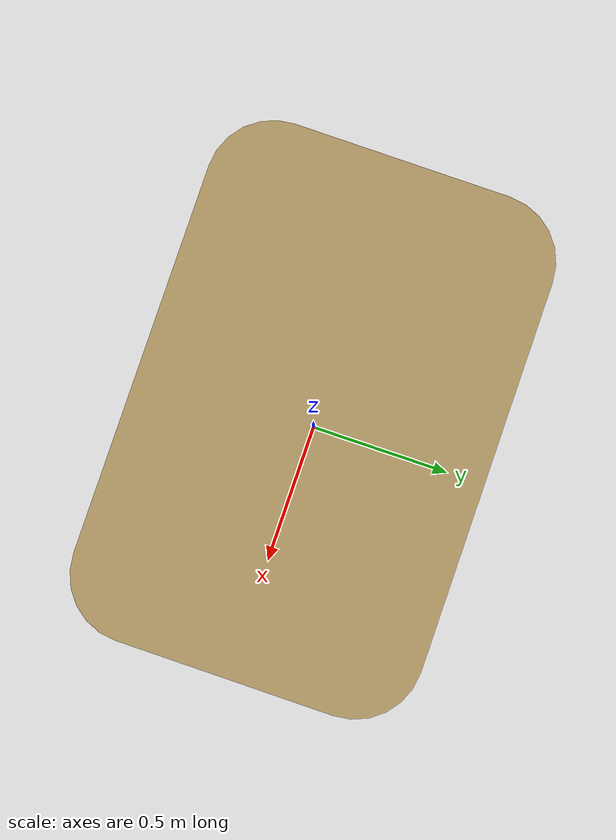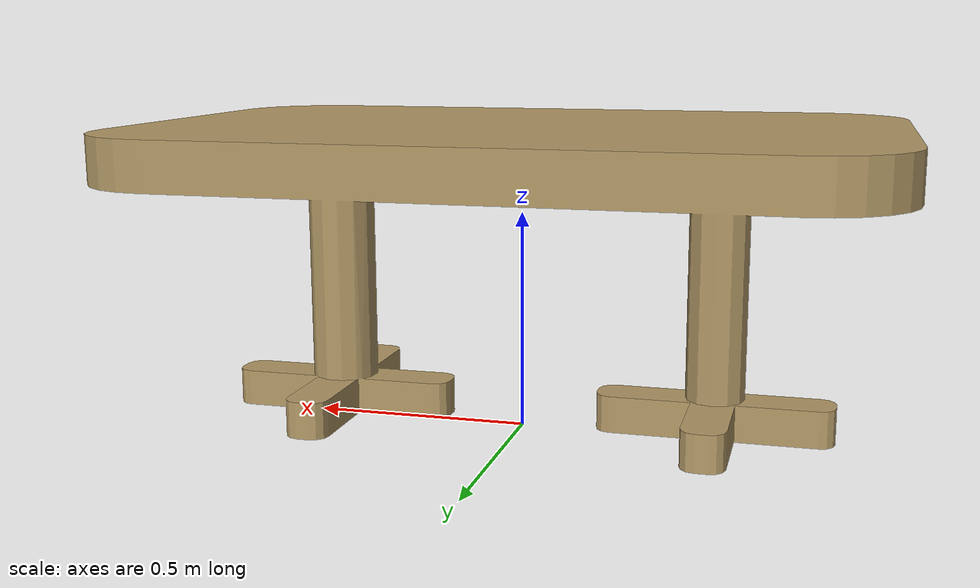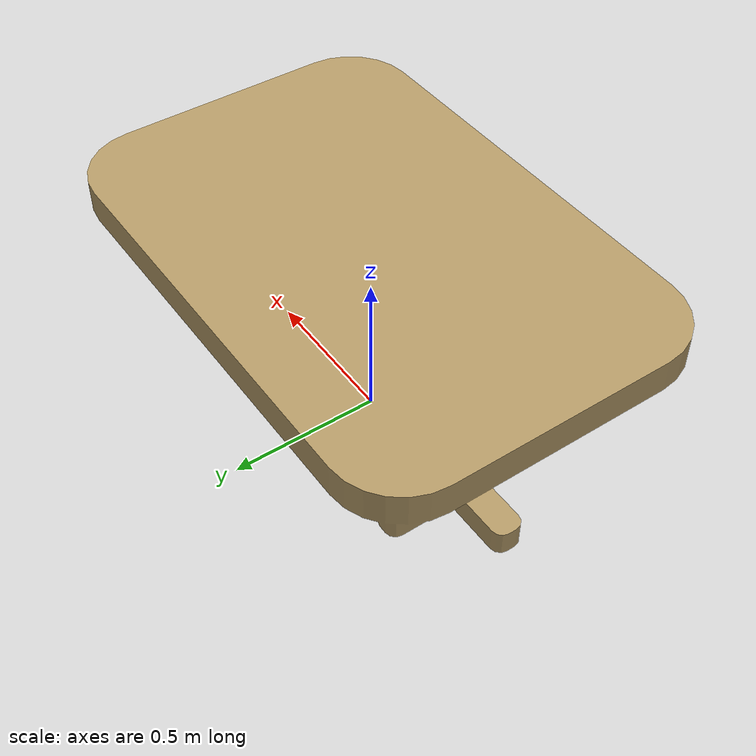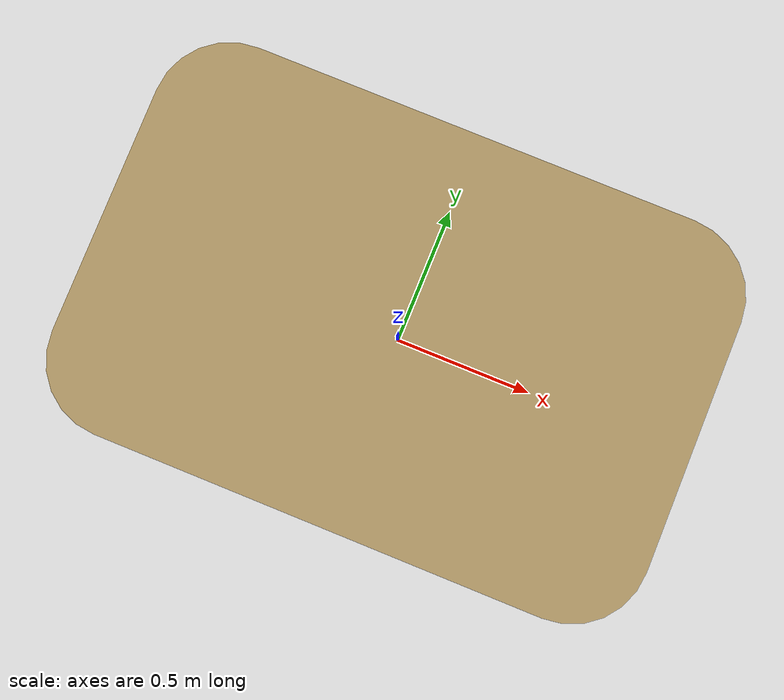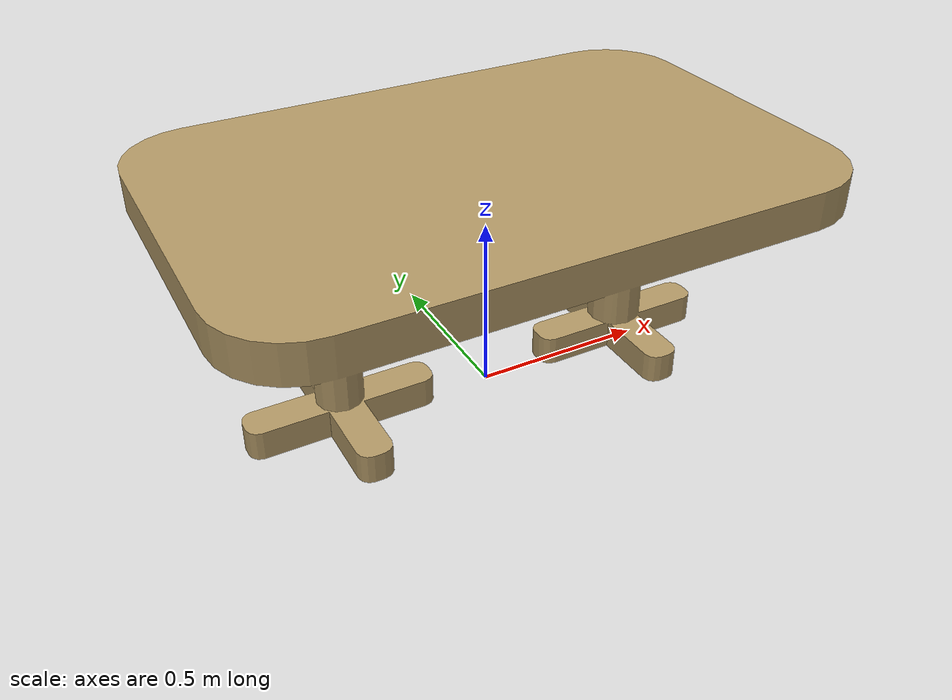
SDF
<?xml version='1.0'?>
<sdf version='1.6'>
  <model name='rai_dinner_table'>
    <link name='link_0'>
      <pose frame=''>0 0 0 0 -0 0</pose>
      <visual name='visual'>
        <pose frame=''>0 0 0.6 1.57 -0 0</pose>
        <geometry>
          <mesh>
            <uri>model://rai_dinning_table/meshes/rai_dinning_table.STL</uri>
            <scale>1 1 1</scale>
          </mesh>
        </geometry>
        <material>
          <lighting>1</lighting>
          <script>
            <uri>file://media/materials/scripts/gazebo.material</uri>
            <name>Gazebo/Grey</name>
          </script>
          <ambient>0.7 0.6 0.4 1</ambient>
          <diffuse>0.7 0.6 0.4 1</diffuse>
          <specular>0.01 0.01 0.01 1</specular>
          <emissive>0 0 0 1</emissive>
          <shader type='vertex'>
            <normal_map>__default__</normal_map>
          </shader>
        </material>
        <cast_shadows>1</cast_shadows>
        <transparency>0</transparency>
      </visual>
      <collision name='collision'>
        <pose frame=''>0 0 0.6 1.57 -0 0</pose>
        <geometry>
          <mesh>
           <uri>model://rai_dinning_table/meshes/rai_dinning_table.STL</uri>
          </mesh>
        </geometry>
      </collision>
    </link>
    <static>1</static>
    <allow_auto_disable>1</allow_auto_disable>
  </model>
</sdf>
